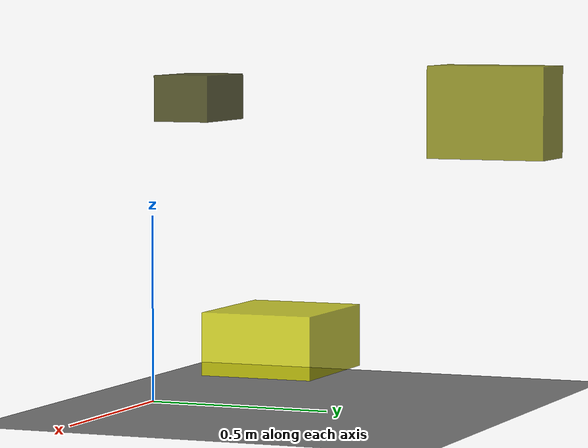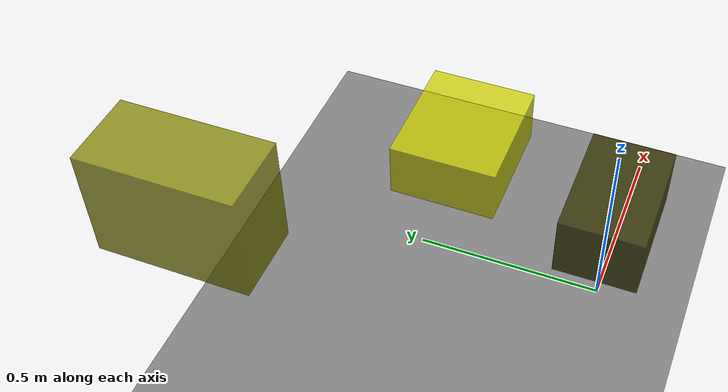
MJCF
<?xml version="1.0"?>
<mujoco model="obstacle_scene">
  <compiler angle="radian" coordinate="local"/>
  <option timestep="0.001" gravity="0 0 -9.81"/>

  <asset>
    <material name="obstacle_mat" rgba="0.8 0.8 0.0 0.8"/>
    <material name="ground_mat" rgba="0.5 0.5 0.5 1"/>
  </asset>

  <worldbody>
    <!-- Ground plane -->
    <geom name="ground" type="plane" size="3 3 0.1" material="ground_mat"/>

    <!-- Obstacles -->
    <body name="obstacle_0" pos="-0.448330 -0.065311 0.800465">
      <geom name="obs_0" type="box" size="0.124254 0.080798 0.063981" rgba="0.2 0.2 0.0 0.8"/>
    </body>
    <body name="obstacle_1" pos="-0.679447 0.731936 0.762733">
      <geom name="obs_1" type="box" size="0.086639 0.169656 0.128573" rgba="0.5 0.5 0.0 0.8"/>
    </body>
    <body name="obstacle_2" pos="0.204762 0.459062 0.209964">
      <geom name="obs_2" type="box" size="0.171461 0.148220 0.080036" rgba="0.8 0.8 0.0 0.8"/>
    </body>
  </worldbody>
</mujoco>
